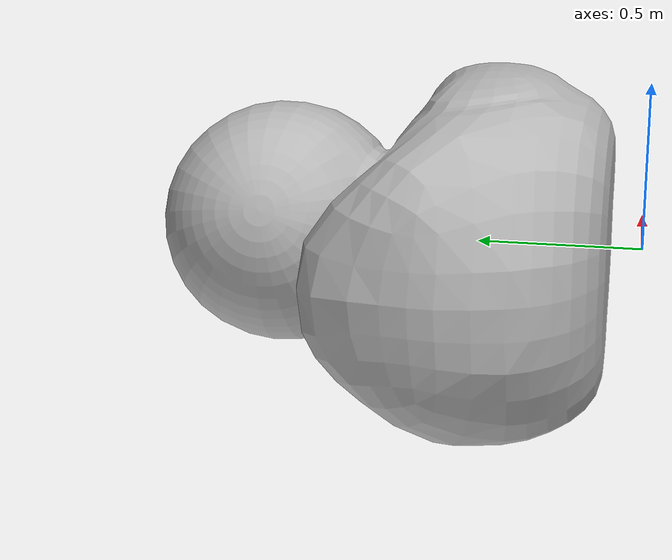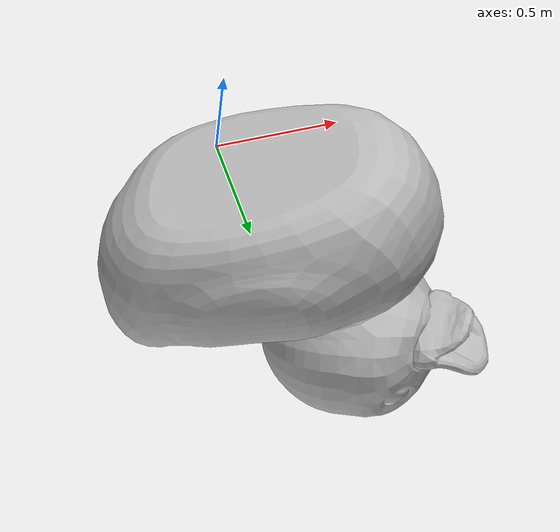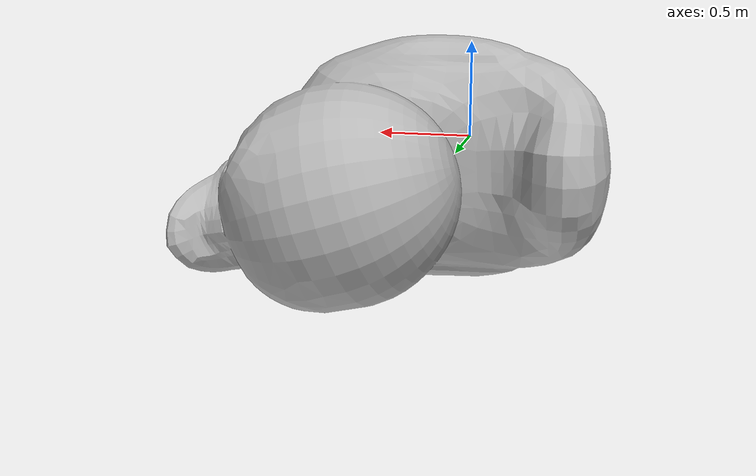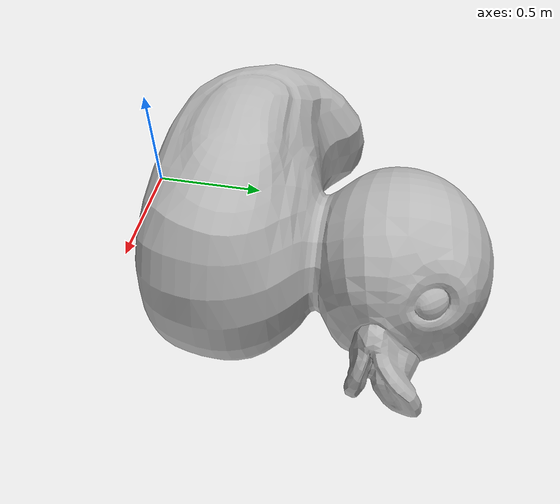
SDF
<?xml version='1.0'?>
<sdf version='1.6'>
  <model name='fireduck'>
    <link name='body'>
      <self_collide>0</self_collide>
      <enable_wind>0</enable_wind>
      <kinematic>0</kinematic>
      <pose frame=''>0 0 0 0 -0 0</pose>
      <visual name='visual'>
        <geometry>
          <mesh>
            <uri>model://fireduck/meshes/FireTest.dae</uri>
          </mesh>
        </geometry>
        <material>
          <shader type='pixel'/>
        </material>
        <pose frame=''>0 0 0 0 -0 0</pose>
        <transparency>0</transparency>
        <cast_shadows>1</cast_shadows>
      </visual>
    </link>
    <static>1</static>
    <allow_auto_disable>1</allow_auto_disable>
  </model>
</sdf>
